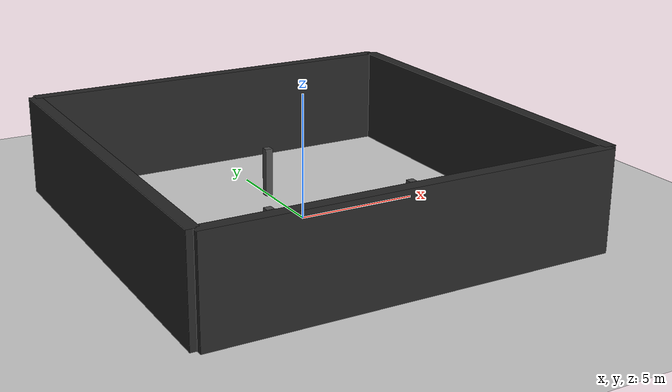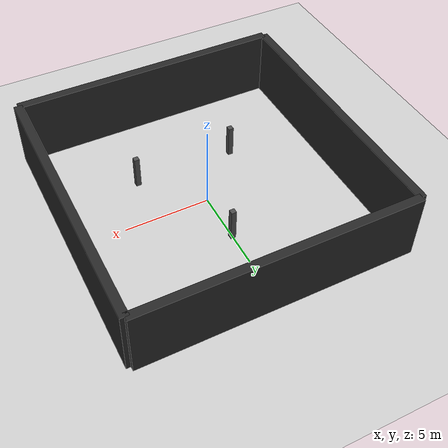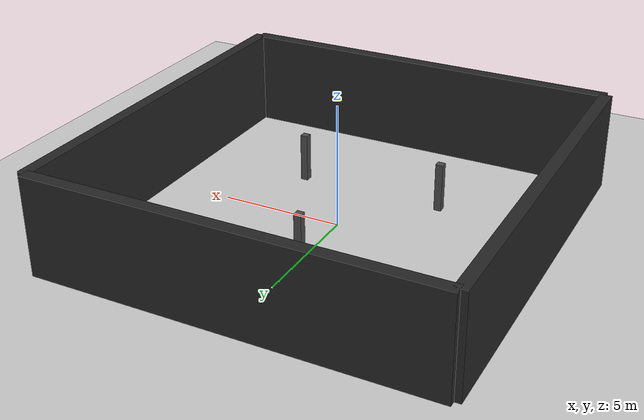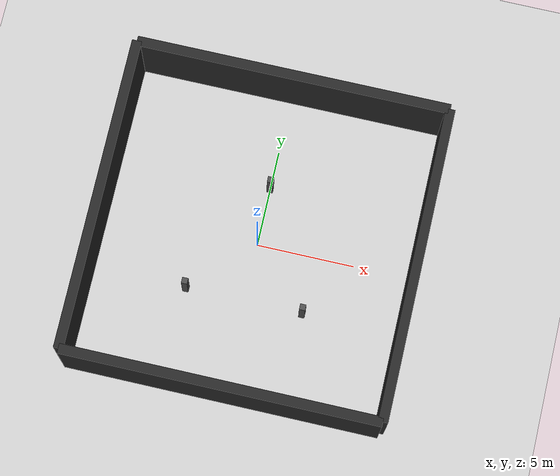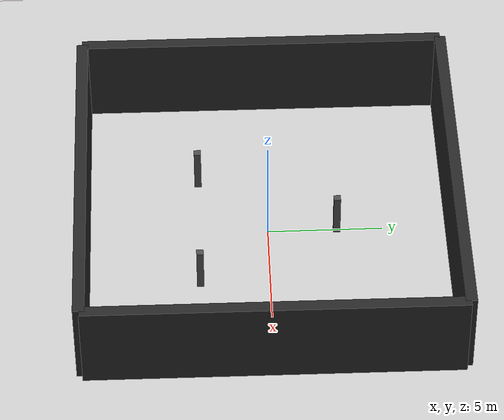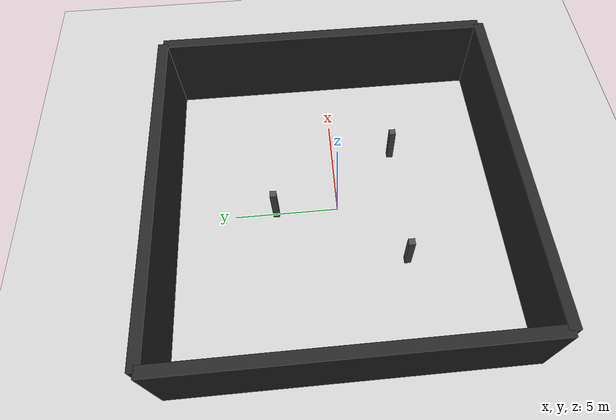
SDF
<?xml version="1.0"?>
<sdf version="1.6">
  <world name="dark_room">
    <gravity>0 0 -9.81</gravity>
    <magnetic_field>0 0 -5e-05</magnetic_field>
    <atmosphere type="adiabatic"/>
    <physics type="ode">
      <real_time_update_rate>1000</real_time_update_rate>
      <real_time_factor>1</real_time_factor>
      <ode>
        <solver><type>quick</type><iters>50</iters><precon>1</precon></solver>
        <constraints><cfm>0.00001</cfm><erp>0.2</erp><contact_max_correcting_vel>100</contact_max_correcting_vel><contact_surface_layer>0.001</contact_surface_layer></constraints>
      </ode>
    </physics>
    <scene>
      <ambient>0.4 0.4 0.4 1</ambient>
      <background>0.7 0.7 0.7 1</background>
      <shadows>true</shadows>
    </scene>

    <!-- 唯一的光源（通过 SetLightProperties 服务控制开关） -->
    <!-- 命名约定："main_light" 供 /test_tools/toggle_light 及后续 control_light.py 使用 -->
    <light name="main_light" type="directional">
      <cast_shadows>true</cast_shadows>
      <diffuse>0.8 0.8 0.8 1</diffuse>
      <specular>0.2 0.2 0.2 1</specular>
      <direction>-0.1 0.1 -1</direction>
    </light>

    <include>
      <uri>model://ground_plane</uri>
    </include>

    <!-- 封闭暗室（无窗，墙壁不透光） -->
    <model name="room_wall_north">
      <static>true</static>
      <pose>0 8 2 0 0 0</pose>
      <link name="body">
        <collision name="col"><geometry><box><size>16 0.5 4</size></box></geometry></collision>
        <visual name="vis"><geometry><box><size>16 0.5 4</size></box></geometry><material><ambient>0.15 0.15 0.15 1</ambient></material></visual>
      </link>
    </model>
    <model name="room_wall_south">
      <static>true</static>
      <pose>0 -8 2 0 0 0</pose>
      <link name="body">
        <collision name="col"><geometry><box><size>16 0.5 4</size></box></geometry></collision>
        <visual name="vis"><geometry><box><size>16 0.5 4</size></box></geometry><material><ambient>0.15 0.15 0.15 1</ambient></material></visual>
      </link>
    </model>
    <model name="room_wall_east">
      <static>true</static>
      <pose>8 0 2 0 0 1.5707963</pose>
      <link name="body">
        <collision name="col"><geometry><box><size>16 0.5 4</size></box></geometry></collision>
        <visual name="vis"><geometry><box><size>16 0.5 4</size></box></geometry><material><ambient>0.15 0.15 0.15 1</ambient></material></visual>
      </link>
    </model>
    <model name="room_wall_west">
      <static>true</static>
      <pose>-8 0 2 0 0 1.5707963</pose>
      <link name="body">
        <collision name="col"><geometry><box><size>16 0.5 4</size></box></geometry></collision>
        <visual name="vis"><geometry><box><size>16 0.5 4</size></box></geometry><material><ambient>0.15 0.15 0.15 1</ambient></material></visual>
      </link>
    </model>

    <!-- 室内柱子（提供一些几何特征，避免完全空旷） -->
    <model name="pillar_1">
      <static>true</static>
      <pose>-3 -3 1 0 0 0</pose>
      <link name="body">
        <collision name="col"><geometry><box><size>0.3 0.3 2</size></box></geometry></collision>
        <visual name="vis"><geometry><box><size>0.3 0.3 2</size></box></geometry><material><ambient>0.3 0.3 0.3 1</ambient></material></visual>
      </link>
    </model>
    <model name="pillar_2">
      <static>true</static>
      <pose>3 -3 1 0 0 0</pose>
      <link name="body">
        <collision name="col"><geometry><box><size>0.3 0.3 2</size></box></geometry></collision>
        <visual name="vis"><geometry><box><size>0.3 0.3 2</size></box></geometry><material><ambient>0.3 0.3 0.3 1</ambient></material></visual>
      </link>
    </model>
    <model name="pillar_3">
      <static>true</static>
      <pose>0 3 1 0 0 0</pose>
      <link name="body">
        <collision name="col"><geometry><box><size>0.3 0.3 2</size></box></geometry></collision>
        <visual name="vis"><geometry><box><size>0.3 0.3 2</size></box></geometry><material><ambient>0.3 0.3 0.3 1</ambient></material></visual>
      </link>
    </model>
  </world>
</sdf>
